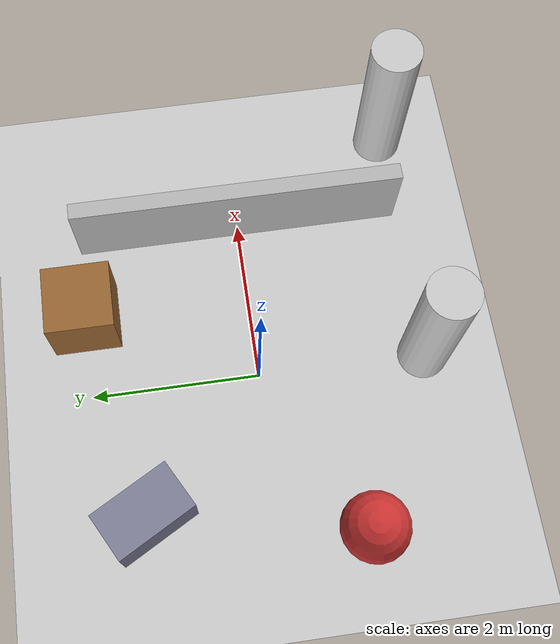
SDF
<?xml version="1.0" ?>
<sdf version="1.8">
  <world name="warehouse">
    <!-- Physics -->
    <physics name="1ms" type="ignored">
      <max_step_size>0.001</max_step_size>
      <real_time_factor>1.0</real_time_factor>
    </physics>

    <!-- Required world plugins for Gazebo Harmonic -->
    <plugin filename="gz-sim-physics-system"
            name="gz::sim::systems::Physics"/>
    <plugin filename="gz-sim-user-commands-system"
            name="gz::sim::systems::UserCommands"/>
    <plugin filename="gz-sim-scene-broadcaster-system"
            name="gz::sim::systems::SceneBroadcaster"/>
    <plugin filename="gz-sim-sensors-system"
            name="gz::sim::systems::Sensors">
      <render_engine>ogre2</render_engine>
    </plugin>

    <!-- Sun -->
    <light name="sun" type="directional">
      <cast_shadows>true</cast_shadows>
      <pose>0 0 10 0 0 0</pose>
      <diffuse>0.8 0.8 0.8 1</diffuse>
      <specular>0.2 0.2 0.2 1</specular>
      <attenuation>
        <range>1000</range>
        <constant>0.9</constant>
        <linear>0.01</linear>
        <quadratic>0.001</quadratic>
      </attenuation>
      <direction>-0.5 0.1 -0.9</direction>
    </light>

    <!-- Ground -->
    <model name="ground_plane">
      <static>true</static>
      <link name="link">
        <collision name="collision">
          <geometry>
            <plane>
              <normal>0 0 1</normal>
              <size>100 100</size>
            </plane>
          </geometry>
        </collision>
        <visual name="visual">
          <geometry>
            <plane>
              <normal>0 0 1</normal>
              <size>100 100</size>
            </plane>
          </geometry>
          <material>
            <ambient>0.8 0.8 0.8 1</ambient>
            <diffuse>0.8 0.8 0.8 1</diffuse>
            <specular>0.1 0.1 0.1 1</specular>
          </material>
        </visual>
      </link>
    </model>

    <!-- Wall -->
    <model name="wall1">
      <static>true</static>
      <link name="link">
        <collision name="collision">
          <geometry><box><size>0.2 4 1</size></box></geometry>
        </collision>
        <visual name="visual">
          <geometry><box><size>0.2 4 1</size></box></geometry>
        </visual>
      </link>
      <pose>2 0 0.5 0 0 0</pose>
    </model>

    <!-- Cargo Box 1 -->
    <model name="cargo_box_1">
      <static>true</static>
      <link name="link">
        <collision name="collision">
          <geometry><box><size>0.8 0.8 0.8</size></box></geometry>
        </collision>
        <visual name="visual">
          <geometry><box><size>0.8 0.8 0.8</size></box></geometry>
          <material><ambient>0.6 0.4 0.2 1</ambient><diffuse>0.6 0.4 0.2 1</diffuse></material>
        </visual>
      </link>
      <pose>1 2 0.4 0 0 0</pose>
    </model>

    <!-- Cargo Box 2 -->
    <model name="cargo_box_2">
      <static>true</static>
      <link name="link">
        <collision name="collision">
          <geometry><box><size>0.6 1.0 0.6</size></box></geometry>
        </collision>
        <visual name="visual">
          <geometry><box><size>0.6 1.0 0.6</size></box></geometry>
          <material><ambient>0.5 0.5 0.6 1</ambient><diffuse>0.5 0.5 0.6 1</diffuse></material>
        </visual>
      </link>
      <pose>-1.5 1.5 0.3 0 0 0.5</pose>
    </model>

    <!-- Pillar 1 -->
    <model name="pillar_1">
      <static>true</static>
      <link name="link">
        <collision name="collision">
          <geometry><cylinder><radius>0.3</radius><length>2.0</length></cylinder></geometry>
        </collision>
        <visual name="visual">
          <geometry><cylinder><radius>0.3</radius><length>2.0</length></cylinder></geometry>
          <material><ambient>0.8 0.8 0.8 1</ambient><diffuse>0.8 0.8 0.8 1</diffuse></material>
        </visual>
      </link>
      <pose>0 -2 1.0 0 0 0</pose>
    </model>

    <!-- Pillar 2 -->
    <model name="pillar_2">
      <static>true</static>
      <link name="link">
        <collision name="collision">
          <geometry><cylinder><radius>0.3</radius><length>2.0</length></cylinder></geometry>
        </collision>
        <visual name="visual">
          <geometry><cylinder><radius>0.3</radius><length>2.0</length></cylinder></geometry>
          <material><ambient>0.8 0.8 0.8 1</ambient><diffuse>0.8 0.8 0.8 1</diffuse></material>
        </visual>
      </link>
      <pose>3 -2 1.0 0 0 0</pose>
    </model>

    <!-- Sphere Obstacle -->
    <model name="sphere_obs">
      <static>true</static>
      <link name="link">
        <collision name="collision">
          <geometry><sphere><radius>0.4</radius></sphere></geometry>
        </collision>
        <visual name="visual">
          <geometry><sphere><radius>0.4</radius></sphere></geometry>
          <material><ambient>0.8 0.2 0.2 1</ambient><diffuse>0.8 0.2 0.2 1</diffuse></material>
        </visual>
      </link>
      <pose>-2 -1 0.4 0 0 0</pose>
    </model>

  </world>
</sdf>
